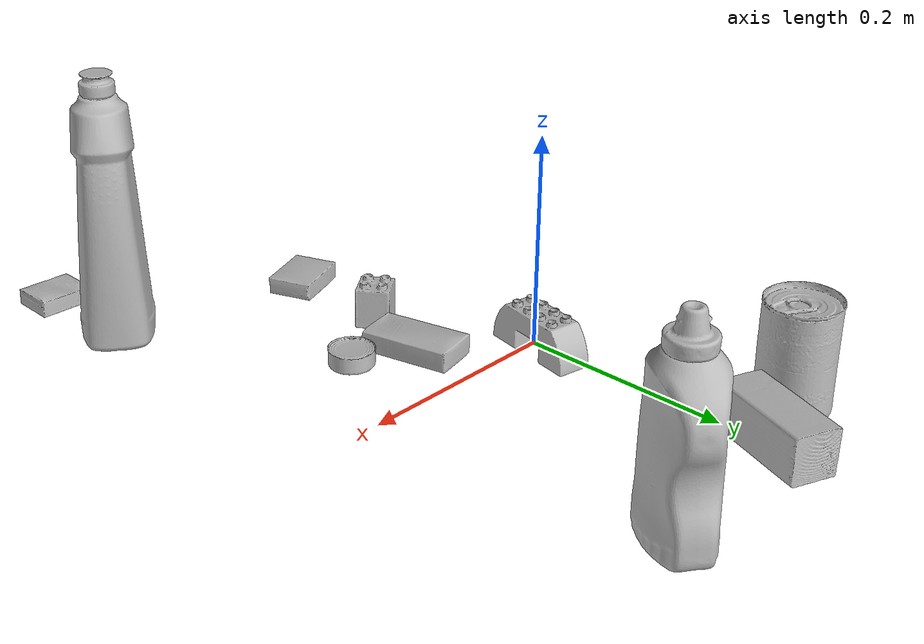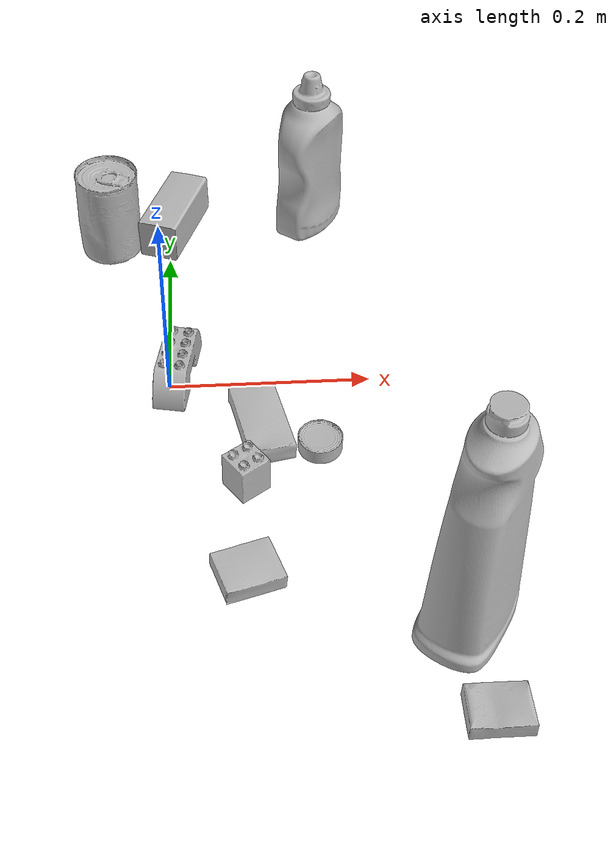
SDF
<sdf version="1.4">
  <world name="default">
    <light name="light1" type="point">
      <pose>0 0 1 0 0 0</pose>
      <diffuse>3 3 3 1</diffuse>
      <specular>3 3 3 1</specular>
    </light>
    <light name="light2" type="point">
      <pose>0 0.5 2 0 0 0</pose>
      <diffuse>1 1 1 1</diffuse>
      <specular>1 1 1 1</specular>
    </light>
    <light name="light3" type="point">
      <pose>0 0.5 2 0 0 0</pose>
      <diffuse>3 3 3 1</diffuse>
      <specular>3 3 3 1</specular>
    </light>
    <scene>
      <ambient>0.7 0.7 0.7</ambient>
    </scene>
    <model name="bottle1">
      <link name="link_bottle1">
        <collision name="default">
          <geometry>
            <mesh>
              <uri>model://bleach_cleanser/collision_meshes/collision.obj</uri>
              <scale>1.0 1.0 1.0</scale>
            </mesh>
          </geometry>
          <surface>
            <friction>
              <ode>
                <mu>0.5</mu>
                <mu2>0.5</mu2>
              </ode>
            </friction>
          <contact>
        <ode>
            <max_vel>0</max_vel>
            <min_depth>0.0001</min_depth>
            <kp>1e8</kp>
        </ode>
    </contact></surface>
        </collision>
        <visual name="default">
          <geometry>
            <mesh>
              <uri>model://bleach_cleanser/visual_meshes/visual.dae</uri>
              <scale>1.0 1.0 1.0</scale>
            </mesh>
          </geometry>
        </visual>
        <inertial>
          <mass>0.7954697608947754</mass>
          <pose>0.00012193184375064448 0.0037838825955986977 -0.02442161552608013 -0.0738167061583634 0.000420116841178447 -0.006875049257496471</pose>
          <inertia>
            <ixx>0.003871667</ixx>
            <iyy>0.0036078263</iyy>
            <izz>0.00066195446</izz>
            <ixy>0</ixy>
            <ixz>0</ixz>
            <iyz>0</iyz>
          </inertia>
        </inertial>
      </link>
      <pose>0.24752163887023926 -0.291719526052475 0.12583500146865845 -0.00026301899927144836 -0.0018984480467044967 -0.6153790305184778</pose>
    </model>
    <model name="bottle2">
      <link name="link_bottle2">
        <collision name="default">
          <geometry>
            <mesh>
              <uri>model://mustard_bottle/collision_meshes/collision.obj</uri>
              <scale>1.0 1.0 1.0</scale>
            </mesh>
          </geometry>
          <surface>
            <friction>
              <ode>
                <mu>0.5</mu>
                <mu2>0.5</mu2>
              </ode>
            </friction>
          <contact>
        <ode>
            <max_vel>0</max_vel>
            <min_depth>0.0001</min_depth>
            <kp>1e8</kp>
        </ode>
    </contact></surface>
        </collision>
        <visual name="default">
          <geometry>
            <mesh>
              <uri>model://mustard_bottle/visual_meshes/visual.dae</uri>
              <scale>1.0 1.0 1.0</scale>
            </mesh>
          </geometry>
        </visual>
        <inertial>
          <mass>0.5118113160133362</mass>
          <pose>0.0005032453336752951 -0.00015647397958673537 -0.017475785687565804 0.0004182313596805905 0.000946575919178121 0.024853765212265823</pose>
          <inertia>
            <ixx>0.00142123</ixx>
            <iyy>0.0012470091</iyy>
            <izz>0.0003745659</izz>
            <ixy>0</ixy>
            <ixz>0</ixz>
            <iyz>0</iyz>
          </inertia>
        </inertial>
      </link>
      <pose>0.16036686301231384 0.26707205176353455 0.09615200757980347 1.5052675801491249e-05 1.6728461330127717e-05 2.4942133982902273</pose>
    </model>
    <model name="toy1">
      <link name="link_toy1">
        <collision name="default">
          <geometry>
            <mesh>
              <uri>model://b_lego_duplo/collision_meshes/collision.obj</uri>
              <scale>1.0 1.0 1.0</scale>
            </mesh>
          </geometry>
          <surface>
            <friction>
              <ode>
                <mu>0.5</mu>
                <mu2>0.5</mu2>
              </ode>
            </friction>
          <contact>
        <ode>
            <max_vel>0</max_vel>
            <min_depth>0.0001</min_depth>
            <kp>1e8</kp>
        </ode>
    </contact></surface>
        </collision>
        <visual name="default">
          <geometry>
            <mesh>
              <uri>model://b_lego_duplo/visual_meshes/visual.dae</uri>
              <scale>1.0 1.0 1.0</scale>
            </mesh>
          </geometry>
        </visual>
        <inertial>
          <mass>0.04622781649231911</mass>
          <pose>-0.00011053043272113428 -9.152668098977301e-06 0.0019294294761493802 -0.037494565787594906 -0.026354503997733224 0.45188645636516256</pose>
          <inertia>
            <ixx>9.46087e-06</ixx>
            <iyy>9.524471e-06</iyy>
            <izz>8.429326e-06</izz>
            <ixy>0</ixy>
            <ixz>0</ixz>
            <iyz>0</iyz>
          </inertia>
        </inertial>
      </link>
      <pose>0.07118291407823563 -0.1334918588399887 0.021814988926053047 2.9649697169372714e-06 1.2203307416541545e-06 0.6074577131690916</pose>
    </model>
    <model name="toy2">
      <link name="link_toy2">
        <collision name="default">
          <geometry>
            <mesh>
              <uri>model://e_lego_duplo/collision_meshes/collision.obj</uri>
              <scale>1.0 1.0 1.0</scale>
            </mesh>
          </geometry>
          <surface>
            <friction>
              <ode>
                <mu>0.5</mu>
                <mu2>0.5</mu2>
              </ode>
            </friction>
          <contact>
        <ode>
            <max_vel>0</max_vel>
            <min_depth>0.0001</min_depth>
            <kp>1e8</kp>
        </ode>
    </contact></surface>
        </collision>
        <visual name="default">
          <geometry>
            <mesh>
              <uri>model://e_lego_duplo/visual_meshes/visual.dae</uri>
              <scale>1.0 1.0 1.0</scale>
            </mesh>
          </geometry>
        </visual>
        <inertial>
          <mass>0.08809097856283188</mass>
          <pose>0.00032560486579313874 0.00023485404381062835 0.0019521467620506883 -0.022567425824888195 -6.82459351116558e-05 -0.007625145117383363</pose>
          <inertia>
            <ixx>1.836988e-05</ixx>
            <iyy>7.539474e-05</iyy>
            <izz>7.34193e-05</izz>
            <ixy>0</ixy>
            <ixz>0</ixz>
            <iyz>0</iyz>
          </inertia>
        </inertial>
      </link>
      <pose>0.008059466257691383 0.013547888956964016 0.021808169782161713 8.069441910613272e-05 -6.241755961575212e-07 -1.7540578701403244</pose>
    </model>
    <model name="can1">
      <link name="link_can1">
        <collision name="default">
          <geometry>
            <mesh>
              <uri>model://tomato_soup_can/collision_meshes/collision.obj</uri>
              <scale>1.0 1.0 1.0</scale>
            </mesh>
          </geometry>
          <surface>
            <friction>
              <ode>
                <mu>0.5</mu>
                <mu2>0.5</mu2>
              </ode>
            </friction>
          <contact>
        <ode>
            <max_vel>0</max_vel>
            <min_depth>0.0001</min_depth>
            <kp>1e8</kp>
        </ode>
    </contact></surface>
        </collision>
        <visual name="default">
          <geometry>
            <mesh>
              <uri>model://tomato_soup_can/visual_meshes/visual.dae</uri>
              <scale>1.0 1.0 1.0</scale>
            </mesh>
          </geometry>
        </visual>
        <inertial>
          <mass>0.4347945749759674</mass>
          <pose>0.0001265227037947625 0.00010805525380419567 -0.0017973979702219367 0.007020064127759274 0.0004229940757469139 -0.009903323281130803</pose>
          <inertia>
            <ixx>0.00047671542</ixx>
            <iyy>0.00047396024</iyy>
            <izz>0.00024707714</izz>
            <ixy>0</ixy>
            <ixz>0</ixz>
            <iyz>0</iyz>
          </inertia>
        </inertial>
      </link>
      <pose>-0.0646805465221405 0.2282017320394516 0.05127401649951935 -1.343833924561791e-07 -5.748447247633479e-07 0.8547905029348379</pose>
    </model>
    <model name="can2">
      <link name="link_can2">
        <collision name="default">
          <geometry>
            <mesh>
              <uri>model://tuna_fish_can/collision_meshes/collision.obj</uri>
              <scale>0.5 0.5 0.5</scale>
            </mesh>
          </geometry>
          <surface>
            <friction>
              <ode>
                <mu>0.5</mu>
                <mu2>0.5</mu2>
              </ode>
            </friction>
          <contact>
        <ode>
            <max_vel>0</max_vel>
            <min_depth>0.0001</min_depth>
            <kp>1e8</kp>
        </ode>
    </contact></surface>
        </collision>
        <visual name="default">
          <geometry>
            <mesh>
              <uri>model://tuna_fish_can/visual_meshes/visual.dae</uri>
              <scale>0.5 0.5 0.5</scale>
            </mesh>
          </geometry>
        </visual>
        <inertial>
          <mass>0.02951119653880596</mass>
          <pose>-2.0361847418826073e-05 -7.256335720740026e-06 -0.0005269026733003557 -0.0017944763161136105 0.00017161533088142807 0.2405366956082085</pose>
          <inertia>
            <ixx>3.989958e-06</ixx>
            <iyy>3.9733272e-06</iyy>
            <izz>6.827389e-06</izz>
            <ixy>0</ixy>
            <ixz>0</ixz>
            <iyz>0</iyz>
          </inertia>
        </inertial>
      </link>
      <pose>0.14291884005069733 -0.0904955342411995 0.00851999968290329 -1.2456806295517933e-08 1.3874707725566463e-08 -0.8469125983054782</pose>
    </model>
    <model name="box1">
      <link name="link_box1">
        <collision name="default">
          <geometry>
            <mesh>
              <uri>model://sugar_box/collision_meshes/collision.obj</uri>
              <scale>0.5 0.5 0.5</scale>
            </mesh>
          </geometry>
          <surface>
            <friction>
              <ode>
                <mu>0.5</mu>
                <mu2>0.5</mu2>
              </ode>
            </friction>
          <contact>
        <ode>
            <max_vel>0</max_vel>
            <min_depth>0.0001</min_depth>
            <kp>1e8</kp>
        </ode>
    </contact></surface>
        </collision>
        <visual name="default">
          <geometry>
            <mesh>
              <uri>model://sugar_box/visual_meshes/visual.dae</uri>
              <scale>0.5 0.5 0.5</scale>
            </mesh>
          </geometry>
        </visual>
        <inertial>
          <mass>0.10932230949401855</mass>
          <pose>0.0005171863595023751 1.924554817378521e-05 -0.00018182402709499002 -0.00040462630024242077 0.0010506636385781449 0.0026153787888990553</pose>
          <inertia>
            <ixx>2.277176e-05</ixx>
            <iyy>7.3603005e-05</iyy>
            <izz>8.811158e-05</izz>
            <ixy>0</ixy>
            <ixz>0</ixz>
            <iyz>0</iyz>
          </inertia>
        </inertial>
      </link>
      <pose>0.08876046538352966 -0.06416419893503189 0.011399304494261742 0.0007752103338307116 -0.023432430941550002 1.7682350276867576</pose>
    </model>
    <model name="box2">
      <link name="link_box2">
        <collision name="default">
          <geometry>
            <mesh>
              <uri>model://pudding_box/collision_meshes/collision.obj</uri>
              <scale>0.5 0.5 0.5</scale>
            </mesh>
          </geometry>
          <surface>
            <friction>
              <ode>
                <mu>0.5</mu>
                <mu2>0.5</mu2>
              </ode>
            </friction>
          <contact>
        <ode>
            <max_vel>0</max_vel>
            <min_depth>0.0001</min_depth>
            <kp>1e8</kp>
        </ode>
    </contact></surface>
        </collision>
        <visual name="default">
          <geometry>
            <mesh>
              <uri>model://pudding_box/visual_meshes/visual.dae</uri>
              <scale>0.5 0.5 0.5</scale>
            </mesh>
          </geometry>
        </visual>
        <inertial>
          <mass>0.061322033405303955</mass>
          <pose>0.00024474109522998333 0.00040339428232982755 -0.0002594413817860186 0.0052131013423229325 -0.006603797777692156 0.020079823300565562</pose>
          <inertia>
            <ixx>1.733035e-05</ixx>
            <iyy>1.1659984e-05</iyy>
            <izz>2.559279e-05</izz>
            <ixy>0</ixy>
            <ixz>0</ixz>
            <iyz>0</iyz>
          </inertia>
        </inertial>
      </link>
      <pose>0.06862704455852509 -0.23680761456489563 0.009862898848950863 0.02234849819100043 -0.011391719389423443 1.8846596726618148</pose>
    </model>
    <model name="box3">
      <link name="link_box3">
        <collision name="default">
          <geometry>
            <mesh>
              <uri>model://cracker_box/collision_meshes/collision.obj</uri>
              <scale>0.25 0.25 0.25</scale>
            </mesh>
          </geometry>
          <surface>
            <friction>
              <ode>
                <mu>0.5</mu>
                <mu2>0.5</mu2>
              </ode>
            </friction>
          <contact>
        <ode>
            <max_vel>0</max_vel>
            <min_depth>0.0001</min_depth>
            <kp>1e8</kp>
        </ode>
    </contact></surface>
        </collision>
        <visual name="default">
          <geometry>
            <mesh>
              <uri>model://cracker_box/visual_meshes/visual.dae</uri>
              <scale>0.25 0.25 0.25</scale>
            </mesh>
          </geometry>
        </visual>
        <inertial>
          <mass>0.05027599632740021</mass>
          <pose>0.00023660380975343287 6.358561222441494e-05 -0.00042573834070935845 -0.0003162076618733006 -0.011106490531610344 0.00254679570085012</pose>
          <inertia>
            <ixx>7.992481e-06</ixx>
            <iyy>1.3197154e-05</iyy>
            <izz>1.8833553e-05</izz>
            <ixy>0</ixy>
            <ixz>0</ixz>
            <iyz>0</iyz>
          </inertia>
        </inertial>
      </link>
      <pose>0.25773313641548157 -0.37920087575912476 0.009096029214560986 -0.014050467877182464 -0.005016611425913935 -0.011963704389545771</pose>
    </model>
    <model name="box4">
      <link name="link_box4">
        <collision name="default">
          <geometry>
            <mesh>
              <uri>model://wood_block/collision_meshes/collision.obj</uri>
              <scale>0.5 0.5 0.5</scale>
            </mesh>
          </geometry>
          <surface>
            <friction>
              <ode>
                <mu>0.5</mu>
                <mu2>0.5</mu2>
              </ode>
            </friction>
          <contact>
        <ode>
            <max_vel>0</max_vel>
            <min_depth>0.0001</min_depth>
            <kp>1e8</kp>
        </ode>
    </contact></surface>
        </collision>
        <visual name="default">
          <geometry>
            <mesh>
              <uri>model://wood_block/visual_meshes/visual.dae</uri>
              <scale>0.5 0.5 0.5</scale>
            </mesh>
          </geometry>
        </visual>
        <inertial>
          <mass>0.30035653710365295</mass>
          <pose>-2.9066577553749084e-06 -0.000285404734313488 0.00013204291462898254 -0.05221128362191582 -0.005192695718477931 -0.0068613783725326285</pose>
          <inertia>
            <ixx>0.00010048062</ixx>
            <iyy>0.00031741828</iyy>
            <izz>0.00031623102</izz>
            <ixy>0</ixy>
            <ixz>0</ixz>
            <iyz>0</iyz>
          </inertia>
        </inertial>
      </link>
      <pose>0.005365378689020872 0.25530532002449036 0.022527460008859634 -0.015853152240449482 -0.0004034312077438029 1.208317579250243</pose>
    </model>
  <physics type="ode">
      <max_contacts>50</max_contacts>
      <ode>
        <solver>
          <type>quick</type>
          <iters>75</iters>
        </solver>
        <constraints>
          <contact_max_correcting_vel>0</contact_max_correcting_vel>
          <contact_surface_layer>0</contact_surface_layer>
        </constraints>
      </ode>
    </physics></world>
</sdf>
